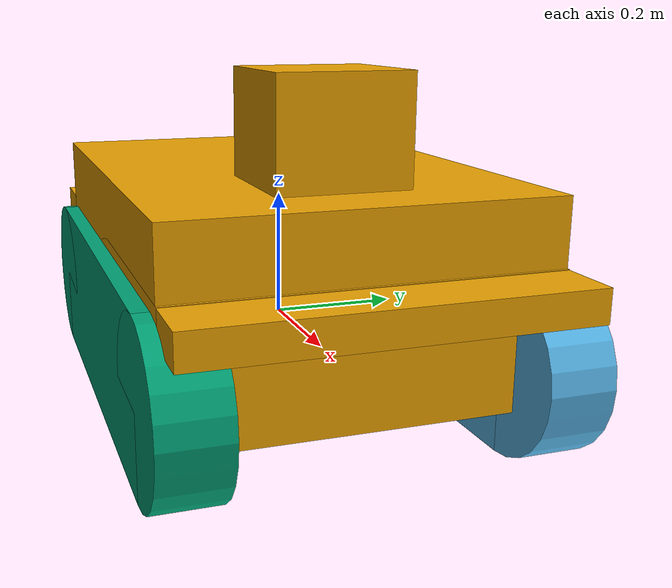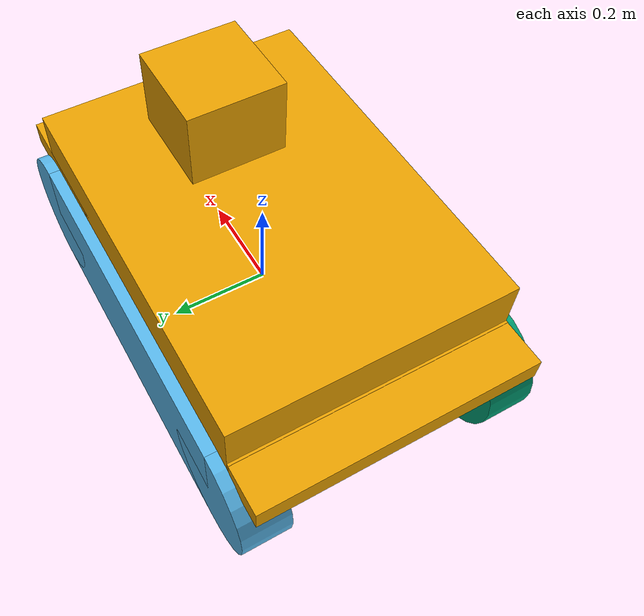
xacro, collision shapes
<?xml version='1.0' encoding='utf-8'?>
<robot name='coro_hd2_sensor_config_1' xmlns:xacro="http://ros.org/wiki/xacro">
  <xacro:arg name="name" default="Pam"/>
  <xacro:property name="robot_namespace" value="$(arg name)"/>
  <link name='${robot_namespace}/base_link'>
    <inertial>
      <origin xyz='-0.000649 -0.084945 0.062329' rpy='0 -0 0'/>
      <mass value='21.8194'/>
      <inertia ixx='0.615397' ixy='-0.0240585' ixz='-0.120749' iyy='1.75388' iyz='-0.0028322' izz='2.03641'/>
    </inertial>
    <collision name='base_link_collision'>
      <origin xyz='0 0 0.12' rpy='0 -0 0'/>
      <geometry>
        <box size='0.9874 0.5709 0.05'/>
      </geometry>
    </collision>
    <collision name='base_link_collision_bottom'>
      <origin xyz='0 0 0.046' rpy='0 -0 0'/>
      <geometry>
        <box size='0.8 0.5709 0.2'/>
      </geometry>
    </collision>
    <collision name='base_link_collision_1'>
      <origin xyz='0 0 0.185625' rpy='0 -0 0'/>
      <geometry>
        <box size='0.78992 0.5709 0.12375'/>
      </geometry>
    </collision>
    <collision name='tower_collision_1'>
      <origin xyz='0.19 0 0.24' rpy='0 -0 0'/>
      <geometry>
        <box size='0.2 0.2 0.34'/>
      </geometry>
    </collision>
    <visual name='Body_visual'>
      <origin xyz='0 0 -0.135' rpy='0 -0 1.57'/>
      <geometry>
        <mesh filename='package://coro_hd2_sensor_config_1/meshes/hd2_marble_base_body_metric.dae' scale='1 1 1'/>
      </geometry>
    </visual>
    <visual name='plate1_visual'>
      <origin xyz='0.19 0 0.38' rpy='0 -0 0'/>
      <geometry>
        <box size='0.2 0.2 0.005'/>
      </geometry>
    </visual>
    <visual name='plate2_visual'>
      <origin xyz='0.19 0 0.27' rpy='0 -0 0'/>
      <geometry>
        <box size='0.2 0.2 0.005'/>
      </geometry>
    </visual>
    <visual name='plate3_visual'>
      <origin xyz='0.19 0 0.08' rpy='0 -0 0'/>
      <geometry>
        <box size='0.2 0.2 0.005'/>
      </geometry>
    </visual>
    <visual name='beam1_visual'>
      <origin xyz='0.281 0.091 0.23' rpy='0 -0 0'/>
      <geometry>
        <box size='0.02 0.02 0.3'/>
      </geometry>
    </visual>
    <visual name='beam2_visual'>
      <origin xyz='0.281 -0.091 0.23' rpy='0 -0 0'/>
      <geometry>
        <box size='0.02 0.02 0.3'/>
      </geometry>
    </visual>
    <visual name='beam3_visual'>
      <origin xyz='0.099 0.091 0.23' rpy='0 -0 0'/>
      <geometry>
        <box size='0.02 0.02 0.3'/>
      </geometry>
    </visual>
    <visual name='beam4_visual'>
      <origin xyz='0.099 -0.091 0.23' rpy='0 -0 0'/>
      <geometry>
        <box size='0.02 0.02 0.3'/>
      </geometry>
    </visual>
    <visual name='d435i_realsense_camera_visual'>
      <origin xyz='0.25 0 0.353' rpy='0 0.46 0'/>
      <geometry>
        <mesh filename='package://coro_hd2_sensor_config_1/meshes/realsense_d435.dae' scale='0.001 0.001 0.001'/>
      </geometry>
    </visual>
    <visual name='vlp16_visual1'>
      <origin xyz='0.19 0 0.272' rpy='0 -0 0'/>
      <geometry>
        <mesh filename='package://coro_hd2_sensor_config_1/meshes/VLP16_base_1.dae' scale='1 1 1'/>
      </geometry>
    </visual>
    <visual name='vlp_visual2'>
      <origin xyz='0.19 0 0.272' rpy='0 -0 0'/>
      <geometry>
        <mesh filename='package://coro_hd2_sensor_config_1/meshes/VLP16_base_2.dae' scale='1 1 1'/>
      </geometry>
    </visual>
    <visual name='vlp_visual3'>
      <origin xyz='0.19 0 0.272' rpy='0 -0 0'/>
      <geometry>
        <mesh filename='package://coro_hd2_sensor_config_1/meshes/VLP16_scan.dae' scale='1 1 1'/>
      </geometry>
    </visual>
    <visual name='camera_front_visual'>
      <origin xyz='0.28 0.06 0.365' rpy='0 -0 0'/>
      <geometry>
        <box size='0.01 0.03 0.03'/>
      </geometry>
    </visual>
    <visual name='camera_lens_front_visual'>
      <origin xyz='0.29 0.06 0.365' rpy='0 1.5708 0'/>
      <geometry>
        <cylinder radius='0.005' length='0.011'/>
      </geometry>
    </visual>
    <visual name='camera_rear_visual'>
      <origin xyz='0.1 0 0.365' rpy='0 -0 0'/>
      <geometry>
        <box size='0.01 0.03 0.03'/>
      </geometry>
    </visual>
    <visual name='camera_lens_rear_visual'>
      <origin xyz='0.09 0 0.365' rpy='0 1.5708 0'/>
      <geometry>
        <cylinder radius='0.005' length='0.011'/>
      </geometry>
    </visual>
    <visual name='camera_left_visual'>
      <origin xyz='0.19 0.09 0.365' rpy='0 -0 0'/>
      <geometry>
        <box size='0.03 0.01 0.03'/>
      </geometry>
    </visual>
    <visual name='camera_lens_left_visual'>
      <origin xyz='0.19 0.1 0.365' rpy='1.5708 -0 0'/>
      <geometry>
        <cylinder radius='0.005' length='0.011'/>
      </geometry>
    </visual>
    <visual name='camera_right_visual'>
      <origin xyz='0.19 -0.09 0.365' rpy='0 -0 0'/>
      <geometry>
        <box size='0.03 0.01 0.03'/>
      </geometry>
    </visual>
    <visual name='camera_lens_right_visual'>
      <origin xyz='0.19 -0.1 0.365' rpy='1.5708 -0 0'/>
      <geometry>
        <cylinder radius='0.005' length='0.011'/>
      </geometry>
    </visual>
    <visual name='light_front_visual'>
      <origin xyz='0.28 0 0.402' rpy='0 -0 0'/>
      <geometry>
        <box size='0.04 0.13 0.04'/>
      </geometry>
    </visual>
    <visual name='light_rear_visual'>
      <origin xyz='0.1 0 0.402' rpy='0 -0 0'/>
      <geometry>
        <box size='0.04 0.12 0.04'/>
      </geometry>
    </visual>
    <visual name='light_left_visual'>
      <origin xyz='0.19 0.09 0.402' rpy='0 -0 0'/>
      <geometry>
        <box size='0.12 0.04 0.04'/>
      </geometry>
    </visual>
    <visual name='light_right_visual'>
      <origin xyz='0.19 -0.09 0.402' rpy='0 -0 0'/>
      <geometry>
        <box size='0.12 0.04 0.04'/>
      </geometry>
    </visual>
    <visual name='thermal_camera_visual'>
      <origin xyz='0.27 -0.06 0.364' rpy='0 -0 0'/>
      <geometry>
        <box size='0.02 0.03 0.03'/>
      </geometry>
    </visual>
  </link>
  <sensor name='thermal_camera' update_rate='9'>
    <parent link='${robot_namespace}/base_link'/>
    <origin xyz='0.28 -0.06 0.364' rpy='0 -0 0'/>
    <camera>
      <image width='206' height='156' format='R8G8B8' hfov='0.628' near='0.1' far='300' />
    </camera>
  </sensor>
  <sensor name='camera_front' update_rate='25'>
    <parent link='${robot_namespace}/base_link'/>
    <origin xyz='0.3 0.06 0.365' rpy='0 -0 0'/>
    <camera>
      <image width='720' height='1080' format='R8G8B8' hfov='1.658' near='0.01' far='300' />
    </camera>
  </sensor>
  <sensor name='camera_rear' update_rate='25'>
    <parent link='${robot_namespace}/base_link'/>
    <origin xyz='0.08 0 0.365' rpy='0 -0 3.14159'/>
    <camera>
      <image width='720' height='1080' format='R8G8B8' hfov='1.658' near='0.01' far='300' />
    </camera>
  </sensor>
  <sensor name='camera_left' update_rate='25'>
    <parent link='${robot_namespace}/base_link'/>
    <origin xyz='0.19 0.11 0.365' rpy='0 -0 1.5708'/>
    <camera>
      <image width='720' height='1080' format='R8G8B8' hfov='1.658' near='0.01' far='300' />
    </camera>
  </sensor>
  <sensor name='camera_right' update_rate='25'>
    <parent link='${robot_namespace}/base_link'/>
    <origin xyz='0.19 -0.11 0.365' rpy='0 0 -1.5708'/>
    <camera>
      <image width='720' height='1080' format='R8G8B8' hfov='1.658' near='0.01' far='300' />
    </camera>
  </sensor>
  <sensor name='front_laser' update_rate='10'>
    <parent link='${robot_namespace}/base_link'/>
    <origin xyz='0.19 0 0.31' rpy='0 -0 0'/>
  </sensor>
  <sensor name='rgbd_front' update_rate='30'>
    <parent link='${robot_namespace}/base_link'/>
    <origin xyz='0.28 0 0.353' rpy='0 0.46 0'/>
    <camera>
      <image width='640' height='360' format='R8G8B8' hfov='1.50098' near='0.01' far='300' />
    </camera>
  </sensor>
  <sensor name='imu_sensor' update_rate='50'>
    <parent link='${robot_namespace}/base_link'/>
    <origin xyz='0 0 0' rpy='0 -0 0'/>
  </sensor>
  <sensor name='air_pressure' update_rate='20'>
    <parent link='${robot_namespace}/base_link'/>
    <origin xyz='0 0 0' rpy='0 -0 0'/>
  </sensor>
  <sensor name='magnetometer' update_rate='50'>
    <parent link='${robot_namespace}/base_link'/>
    <origin xyz='0 0 0' rpy='0 -0 0'/>
  </sensor>
  <link name='${robot_namespace}/left_track'>
    <collision name='front_left_wheel_link_collision'>
      <origin xyz='0.36 0 0' rpy='1.5708 -0 0'/>
      <geometry>
        <cylinder radius='0.129' length='0.1'/>
      </geometry>
    </collision>
    <collision name='rear_left_wheel_link_collision'>
      <origin xyz='-0.36 0 0' rpy='1.5708 -0 0'/>
      <geometry>
        <cylinder radius='0.129' length='0.1'/>
      </geometry>
    </collision>
    <collision name='left_track_box_collision'>
      <geometry>
        <box size='0.72 0.1 0.258'/>
      </geometry>
    </collision>
  </link>
  <link name='${robot_namespace}/right_track'>
    <collision name='front_right_wheel_link_collision'>
      <origin xyz='0.36 0 0' rpy='1.5708 -0 0'/>
      <geometry>
        <cylinder radius='0.129' length='0.1'/>
      </geometry>
    </collision>
    <collision name='rear_right_wheel_link_collision'>
      <origin xyz='-0.36 0 0' rpy='1.5708 -0 0'/>
      <geometry>
        <cylinder radius='0.129' length='0.1'/>
      </geometry>
    </collision>
    <collision name='right_track_box_collision'>
      <geometry>
        <box size='0.72 0.1 0.258'/>
      </geometry>
    </collision>
  </link>
  <joint name='left_track_j' type='fixed'>
    <origin xyz='0 0.26 0' rpy='0 0 0'/>
    <parent link='${robot_namespace}/base_link'/>
    <child link='${robot_namespace}/left_track'/>
  </joint>
  <joint name='right_track_j' type='fixed'>
    <origin xyz='0 -0.26 0' rpy='0 0 0'/>
    <parent link='${robot_namespace}/base_link'/>
    <child link='${robot_namespace}/right_track'/>
  </joint>
</robot>
